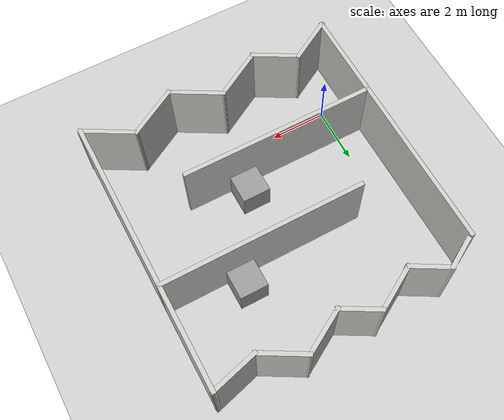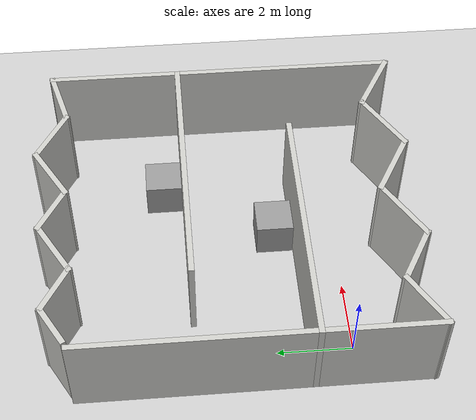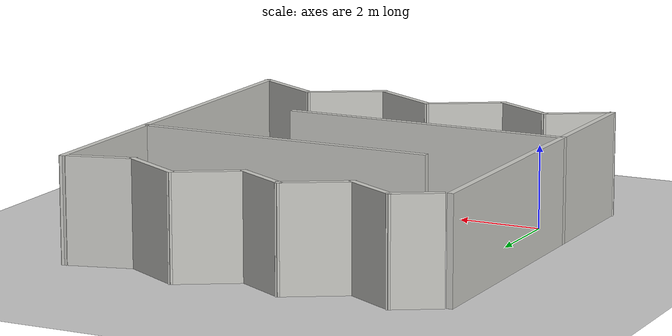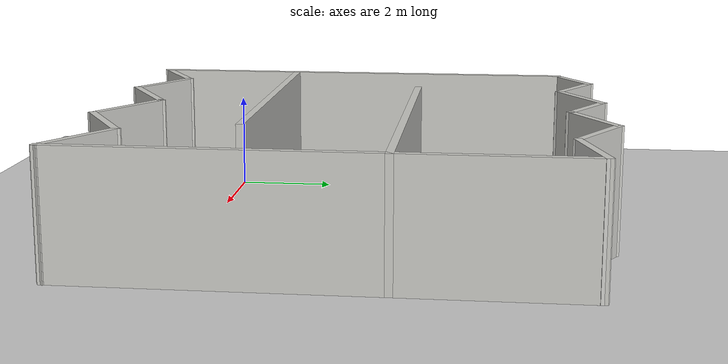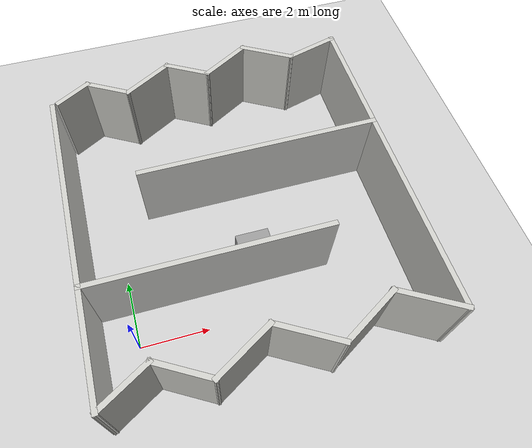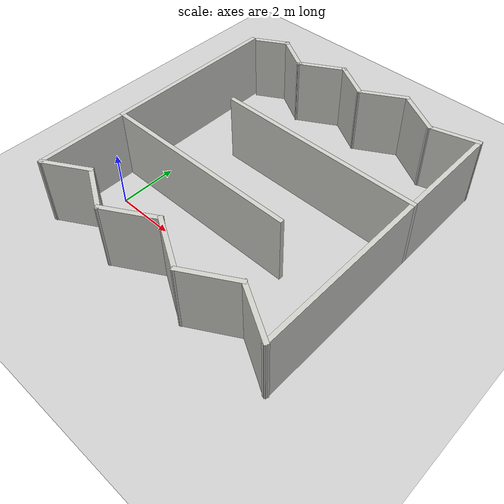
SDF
<sdf version="1.6">
 <world name="default">
  <light name="sun" type="directional">
   <pose>0 0 10 0 -0 0</pose>
   <diffuse>0.8 0.8 0.8 1</diffuse>
   <specular>0.1 0.1 0.1 1</specular>
   <attenuation>
    <range>1000</range>
    <constant>0.9</constant>
    <linear>0.01</linear>
    <quadratic>0.001</quadratic>
   </attenuation>
   <direction>-0.5 0.5 -1</direction>
  </light>
  <model name="ground_plane">
   <static>1</static>
   <link name="link">
    <collision name="collision">
     <geometry><plane><normal>0 0 1</normal><size>100 100</size></plane></geometry>
     <surface><friction><ode><mu>100</mu><mu2>50</mu2></ode></friction></surface>
    </collision>
    <visual name="visual">
     <cast_shadows>0</cast_shadows>
     <geometry><plane><normal>0 0 1</normal><size>100 100</size></plane></geometry>
     <material>
      <script><uri>file://media/materials/scripts/gazebo.material</uri><name>Gazebo/Grey</name></script>
     </material>
    </visual>
   </link>
  </model>
  <gravity>0 0 -9.8</gravity>
  <magnetic_field>6e-06 2.3e-05 -4.2e-05</magnetic_field>
  <atmosphere type="adiabatic"/>
  <physics name="default_physics" default="0" type="ode">
   <max_step_size>0.001</max_step_size>
   <real_time_factor>1</real_time_factor>
   <real_time_update_rate>1000</real_time_update_rate>
  </physics>
  <scene><ambient>0.4 0.4 0.4 1</ambient><background>0.7 0.7 0.7 1</background><shadows>1</shadows></scene>
  <spherical_coordinates>
   <surface_model>EARTH_WGS84</surface_model>
   <latitude_deg>0</latitude_deg>
   <longitude_deg>0</longitude_deg>
   <elevation>0</elevation>
   <heading_deg>0</heading_deg>
  </spherical_coordinates>
  <model name="Untitled">
   <pose>3.5899 3.05749 0 0 -0 0</pose>
   <link name="Wall_12">
    <collision name="Wall_12_Collision">
     <geometry><box><size>7 0.15 2.5</size></box></geometry>
     <pose>0 0 1.25 0 -0 0</pose>
    </collision>
    <visual name="Wall_12_Visual">
     <pose>0 0 1.25 0 -0 0</pose>
     <geometry><box><size>7 0.15 2.5</size></box></geometry>
     <material>
      <script><uri>file://media/materials/scripts/gazebo.material</uri><name>Gazebo/CeilingTiled</name></script>
      <ambient>1 1 1 1</ambient>
     </material>
    </visual>
    <pose>-1.16494 -1.94294 0 0 -0 0</pose>
   </link>
   <link name="Wall_14">
    <collision name="Wall_14_Collision">
     <geometry><box><size>3.25 0.15 2.5</size></box></geometry>
     <pose>0 0 1.25 0 -0 0</pose>
    </collision>
    <visual name="Wall_14_Visual">
     <pose>0 0 1.25 0 -0 0</pose>
     <geometry><box><size>3.25 0.15 2.5</size></box></geometry>
     <material>
      <script><uri>file://media/materials/scripts/gazebo.material</uri><name>Gazebo/CeilingTiled</name></script>
      <ambient>1 1 1 1</ambient>
     </material>
    </visual>
    <pose>-4.58993 -3.49295 0 0 0 -1.5708</pose>
   </link>
   <link name="Wall_15">
    <collision name="Wall_15_Collision">
     <geometry><box><size>1.75 0.15 2.5</size></box></geometry>
     <pose>0 0 1.25 0 -0 0</pose>
    </collision>
    <visual name="Wall_15_Visual">
     <pose>0 0 1.25 0 -0 0</pose>
     <geometry><box><size>1.75 0.15 2.5</size></box></geometry>
     <material>
      <script><uri>file://media/materials/scripts/gazebo.material</uri><name>Gazebo/CeilingTiled</name></script>
      <ambient>1 1 1 1</ambient>
     </material>
    </visual>
    <pose>-3.89711 -4.64295 0 0 -0 0.523599</pose>
   </link>
   <link name="Wall_16">
    <collision name="Wall_16_Collision">
     <geometry><box><size>1.75 0.15 2.5</size></box></geometry>
     <pose>0 0 1.25 0 -0 0</pose>
    </collision>
    <visual name="Wall_16_Visual">
     <pose>0 0 1.25 0 -0 0</pose>
     <geometry><box><size>1.75 0.15 2.5</size></box></geometry>
     <material>
      <script><uri>file://media/materials/scripts/gazebo.material</uri><name>Gazebo/CeilingTiled</name></script>
      <ambient>1 1 1 1</ambient>
     </material>
    </visual>
    <pose>-2.51147 -4.64295 0 0 0 -0.523599</pose>
   </link>
   <link name="Wall_17">
    <collision name="Wall_17_Collision">
     <geometry><box><size>2 0.15 2.5</size></box></geometry>
     <pose>0 0 1.25 0 -0 0</pose>
    </collision>
    <visual name="Wall_17_Visual">
     <pose>0 0 1.25 0 -0 0</pose>
     <geometry><box><size>2 0.15 2.5</size></box></geometry>
     <material>
      <script><uri>file://media/materials/scripts/gazebo.material</uri><name>Gazebo/CeilingTiled</name></script>
      <ambient>1 1 1 1</ambient>
     </material>
    </visual>
    <pose>-1.01758 -4.58045 0 0 -0 0.523599</pose>
   </link>
   <link name="Wall_18">
    <collision name="Wall_18_Collision">
     <geometry><box><size>2 0.15 2.5</size></box></geometry>
     <pose>0 0 1.25 0 -0 0</pose>
    </collision>
    <visual name="Wall_18_Visual">
     <pose>0 0 1.25 0 -0 0</pose>
     <geometry><box><size>2 0.15 2.5</size></box></geometry>
     <material>
      <script><uri>file://media/materials/scripts/gazebo.material</uri><name>Gazebo/CeilingTiled</name></script>
      <ambient>1 1 1 1</ambient>
     </material>
    </visual>
    <pose>0.584567 -4.58045 0 0 0 -0.523599</pose>
   </link>
   <link name="Wall_19">
    <collision name="Wall_19_Collision">
     <geometry><box><size>2 0.15 2.5</size></box></geometry>
     <pose>0 0 1.25 0 -0 0</pose>
    </collision>
    <visual name="Wall_19_Visual">
     <pose>0 0 1.25 0 -0 0</pose>
     <geometry><box><size>2 0.15 2.5</size></box></geometry>
     <material>
      <script><uri>file://media/materials/scripts/gazebo.material</uri><name>Gazebo/CeilingTiled</name></script>
      <ambient>1 1 1 1</ambient>
     </material>
    </visual>
    <pose>2.18671 -4.58045 0 0 -0 0.523599</pose>
   </link>
   <link name="Wall_20">
    <collision name="Wall_20_Collision">
     <geometry><box><size>2 0.15 2.5</size></box></geometry>
     <pose>0 0 1.25 0 -0 0</pose>
    </collision>
    <visual name="Wall_20_Visual">
     <pose>0 0 1.25 0 -0 0</pose>
     <geometry><box><size>2 0.15 2.5</size></box></geometry>
     <material>
      <script><uri>file://media/materials/scripts/gazebo.material</uri><name>Gazebo/CeilingTiled</name></script>
      <ambient>1 1 1 1</ambient>
     </material>
    </visual>
    <pose>3.78886 -4.58045 0 0 0 -0.523599</pose>
   </link>
   <link name="Wall_21">
    <collision name="Wall_21_Collision">
     <geometry><box><size>6.25 0.15 2.5</size></box></geometry>
     <pose>0 0 1.25 0 -0 0</pose>
    </collision>
    <visual name="Wall_21_Visual">
     <pose>0 0 1.25 0 -0 0</pose>
     <geometry><box><size>6.25 0.15 2.5</size></box></geometry>
     <material>
      <script><uri>file://media/materials/scripts/gazebo.material</uri><name>Gazebo/CeilingTiled</name></script>
      <ambient>1 1 1 1</ambient>
     </material>
    </visual>
    <pose>4.58993 -1.99294 0 0 -0 1.5708</pose>
   </link>
   <link name="Wall_22">
    <collision name="Wall_22_Collision">
     <geometry><box><size>7.25 0.15 2.5</size></box></geometry>
     <pose>0 0 1.25 0 -0 0</pose>
    </collision>
    <visual name="Wall_22_Visual">
     <pose>0 0 1.25 0 -0 0</pose>
     <geometry><box><size>7.25 0.15 2.5</size></box></geometry>
     <material>
      <script><uri>file://media/materials/scripts/gazebo.material</uri><name>Gazebo/CeilingTiled</name></script>
      <ambient>1 1 1 1</ambient>
     </material>
    </visual>
    <pose>1.03994 1.05706 0 0 -0 3.14159</pose>
   </link>
   <link name="Wall_24">
    <collision name="Wall_24_Collision">
     <geometry><box><size>3.75 0.15 2.5</size></box></geometry>
     <pose>0 0 1.25 0 -0 0</pose>
    </collision>
    <visual name="Wall_24_Visual">
     <pose>0 0 1.25 0 -0 0</pose>
     <geometry><box><size>3.75 0.15 2.5</size></box></geometry>
     <material>
      <script><uri>file://media/materials/scripts/gazebo.material</uri><name>Gazebo/CeilingTiled</name></script>
      <ambient>1 1 1 1</ambient>
     </material>
    </visual>
    <pose>4.58993 2.85705 0 0 -0 1.5708</pose>
   </link>
   <link name="Wall_25">
    <collision name="Wall_25_Collision">
     <geometry><box><size>1.75 0.15 2.5</size></box></geometry>
     <pose>0 0 1.25 0 -0 0</pose>
    </collision>
    <visual name="Wall_25_Visual">
     <pose>0 0 1.25 0 -0 0</pose>
     <geometry><box><size>1.75 0.15 2.5</size></box></geometry>
     <material>
      <script><uri>file://media/materials/scripts/gazebo.material</uri><name>Gazebo/CeilingTiled</name></script>
      <ambient>1 1 1 1</ambient>
     </material>
    </visual>
    <pose>3.81719 4.45 0 0 0 -2.87979</pose>
   </link>
   <link name="Wall_26">
    <collision name="Wall_26_Collision">
     <geometry><box><size>1.75 0.15 2.5</size></box></geometry>
     <pose>0 0 1.25 0 -0 0</pose>
    </collision>
    <visual name="Wall_26_Visual">
     <pose>0 0 1.25 0 -0 0</pose>
     <geometry><box><size>1.75 0.15 2.5</size></box></geometry>
     <material>
      <script><uri>file://media/materials/scripts/gazebo.material</uri><name>Gazebo/CeilingTiled</name></script>
      <ambient>1 1 1 1</ambient>
     </material>
    </visual>
    <pose>2.35163 4.64295 0 0 -0 2.61799</pose>
   </link>
   <link name="Wall_27">
    <collision name="Wall_27_Collision">
     <geometry><box><size>1.75 0.15 2.5</size></box></geometry>
     <pose>0 0 1.25 0 -0 0</pose>
    </collision>
    <visual name="Wall_27_Visual">
     <pose>0 0 1.25 0 -0 0</pose>
     <geometry><box><size>1.75 0.15 2.5</size></box></geometry>
     <material>
      <script><uri>file://media/materials/scripts/gazebo.material</uri><name>Gazebo/CeilingTiled</name></script>
      <ambient>1 1 1 1</ambient>
     </material>
    </visual>
    <pose>0.965992 4.64295 0 0 0 -2.61799</pose>
   </link>
   <link name="Wall_28">
    <collision name="Wall_28_Collision">
     <geometry><box><size>1.5 0.15 2.5</size></box></geometry>
     <pose>0 0 1.25 0 -0 0</pose>
    </collision>
    <visual name="Wall_28_Visual">
     <pose>0 0 1.25 0 -0 0</pose>
     <geometry><box><size>1.5 0.15 2.5</size></box></geometry>
     <material>
      <script><uri>file://media/materials/scripts/gazebo.material</uri><name>Gazebo/CeilingTiled</name></script>
      <ambient>1 1 1 1</ambient>
     </material>
    </visual>
    <pose>-0.311395 4.58045 0 0 -0 2.61799</pose>
   </link>
   <link name="Wall_29">
    <collision name="Wall_29_Collision">
     <geometry><box><size>1.75 0.15 2.5</size></box></geometry>
     <pose>0 0 1.25 0 -0 0</pose>
    </collision>
    <visual name="Wall_29_Visual">
     <pose>0 0 1.25 0 -0 0</pose>
     <geometry><box><size>1.75 0.15 2.5</size></box></geometry>
     <material>
      <script><uri>file://media/materials/scripts/gazebo.material</uri><name>Gazebo/CeilingTiled</name></script>
      <ambient>1 1 1 1</ambient>
     </material>
    </visual>
    <pose>-1.58878 4.51795 0 0 0 -2.61799</pose>
   </link>
   <link name="Wall_30">
    <collision name="Wall_30_Collision">
     <geometry><box><size>1.5 0.15 2.5</size></box></geometry>
     <pose>0 0 1.25 0 -0 0</pose>
    </collision>
    <visual name="Wall_30_Visual">
     <pose>0 0 1.25 0 -0 0</pose>
     <geometry><box><size>1.5 0.15 2.5</size></box></geometry>
     <material>
      <script><uri>file://media/materials/scripts/gazebo.material</uri><name>Gazebo/CeilingTiled</name></script>
      <ambient>1 1 1 1</ambient>
     </material>
    </visual>
    <pose>-2.86617 4.45545 0 0 -0 2.61799</pose>
   </link>
   <link name="Wall_31">
    <collision name="Wall_31_Collision">
     <geometry><box><size>1.25 0.15 2.5</size></box></geometry>
     <pose>0 0 1.25 0 -0 0</pose>
    </collision>
    <visual name="Wall_31_Visual">
     <pose>0 0 1.25 0 -0 0</pose>
     <geometry><box><size>1.25 0.15 2.5</size></box></geometry>
     <material>
      <script><uri>file://media/materials/scripts/gazebo.material</uri><name>Gazebo/CeilingTiled</name></script>
      <ambient>1 1 1 1</ambient>
     </material>
    </visual>
    <pose>-3.92705 4.51795 0 0 0 -2.61799</pose>
   </link>
   <link name="Wall_36">
    <collision name="Wall_36_Collision">
     <geometry><box><size>6.25 0.15 2.5</size></box></geometry>
     <pose>0 0 1.25 0 -0 0</pose>
    </collision>
    <visual name="Wall_36_Visual">
     <pose>0 0 1.25 0 -0 0</pose>
     <geometry><box><size>6.25 0.15 2.5</size></box></geometry>
     <material>
      <script><uri>file://media/materials/scripts/gazebo.material</uri><name>Gazebo/CeilingTiled</name></script>
      <ambient>1 1 1 1</ambient>
     </material>
    </visual>
    <pose>-4.58993 1.10705 0 0 -0 1.5708</pose>
   </link>
   <static>1</static>
  </model>
  <model name="unit_box_0">
   <pose>3.86101 1.70816 0.499995 -1e-05 0 0</pose>
   <link name="link">
    <inertial>
     <mass>1</mass>
     <inertia>
      <ixx>0.166667</ixx>
      <ixy>0</ixy>
      <ixz>0</ixz>
      <iyy>0.166667</iyy>
      <iyz>0</iyz>
      <izz>0.166667</izz>
     </inertia>
    </inertial>
    <collision name="collision"><geometry><box><size>1 1 1</size></box></geometry></collision>
    <visual name="visual">
     <geometry><box><size>1 1 1</size></box></geometry>
     <material>
      <script><name>Gazebo/Grey</name><uri>file://media/materials/scripts/gazebo.material</uri></script>
     </material>
    </visual>
   </link>
  </model>
  <model name="unit_box_1">
   <pose>5.54304 4.69574 0.5 0 -0 0</pose>
   <link name="link">
    <inertial>
     <mass>1</mass>
     <inertia>
      <ixx>0.166667</ixx>
      <ixy>0</ixy>
      <ixz>0</ixz>
      <iyy>0.166667</iyy>
      <iyz>0</iyz>
      <izz>0.166667</izz>
     </inertia>
    </inertial>
    <collision name="collision"><geometry><box><size>1 1 1</size></box></geometry></collision>
    <visual name="visual">
     <geometry><box><size>1 1 1</size></box></geometry>
     <material>
      <script><name>Gazebo/Grey</name><uri>file://media/materials/scripts/gazebo.material</uri></script>
     </material>
    </visual>
   </link>
  </model>
 </world>
</sdf>
